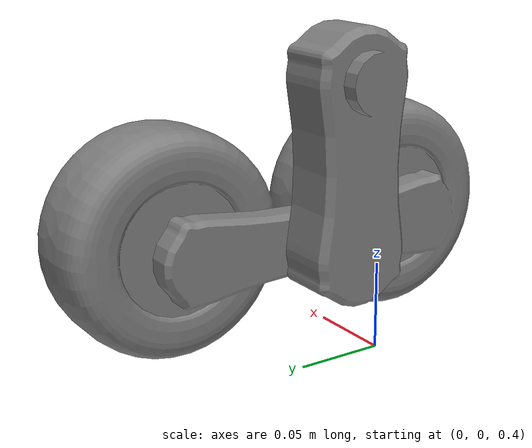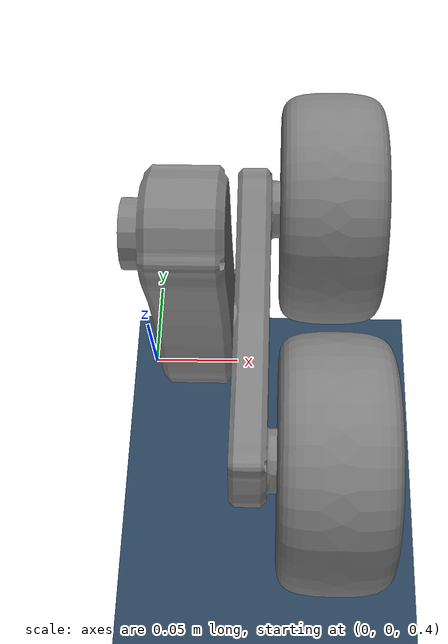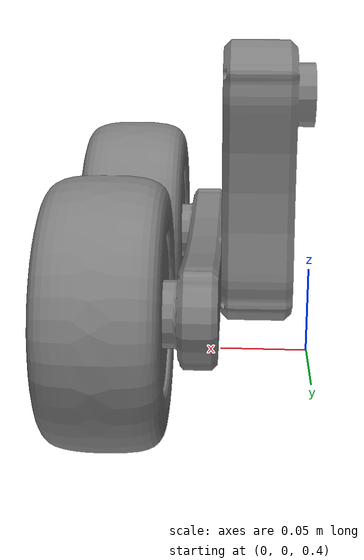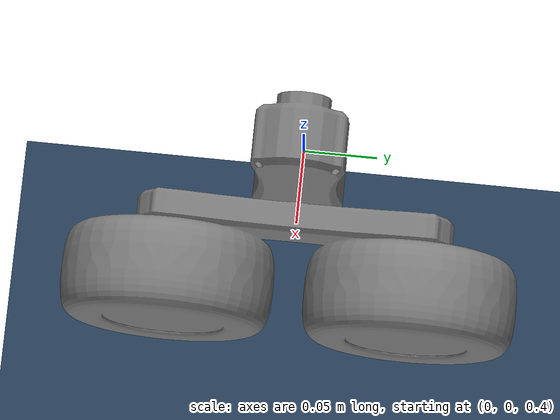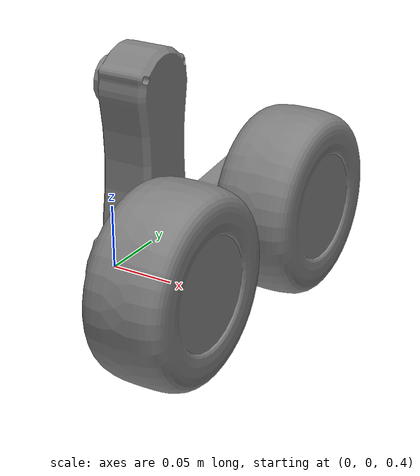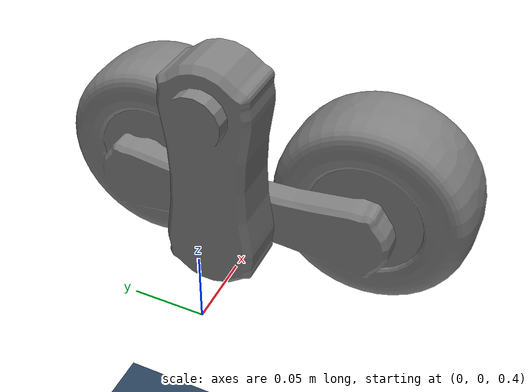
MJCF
<mujoco model="walter leg scene">
    <include file="leg.xml"/>

    <statistic center="0 0 0.1" extent="0.8"/>

    <visual>
        <headlight diffuse="0.6 0.6 0.6" ambient="0.3 0.3 0.3" specular="0 0 0"/>
        <rgba haze="0.15 0.25 0.35 1"/>
        <global azimuth="120" elevation="-20"/>
    </visual>

    <asset>
        <texture type="skybox" builtin="gradient" rgb1="0.3 0.5 0.7" rgb2="0 0 0" width="512" height="3072"/>
        <texture type="2d" name="groundplane" builtin="checker" mark="edge" rgb1="0.2 0.3 0.4" rgb2="0.1 0.2 0.3"
        markrgb="0.8 0.8 0.8" width="300" height="300"/>
        <material name="groundplane" texture="groundplane" texuniform="true" texrepeat="5 5" reflectance="0.2"/>
    </asset>

    <worldbody>
        <light pos="0 0 1.5" dir="0 0 -1" directional="true"/>
        <camera name="default" pos="0.846 -1.465 0.916" xyaxes="0.866 0.500 0.000 -0.171 0.296 0.940"/>
        <geom name="floor" size="0 0 0.05" type="plane" material="groundplane"/>
    </worldbody>

    <keyframe>
        <key name="home" qpos="0 0" ctrl="0.0 0.0"/>
    </keyframe>

</mujoco>

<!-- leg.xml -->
<mujoco model="walter_leg">
    <compiler angle="radian" inertiafromgeom="false"/>

    <option iterations="1" ls_iterations="5">
        <flag eulerdamp="disable"/>
    </option>

    <default>
        <default class="visual">
            <geom contype="0" conaffinity="0" type="mesh"/>
        </default>
    </default>

    <asset>
        <mesh name="thigh_mesh" file="assets/Thigh.stl"/>
        <mesh name="shin_mesh" file="assets/WheelShin.stl"/>
    </asset>

    <worldbody>
        <body name="fixed_base" pos="0.0 0.0 0.5" quat="1 0 0 0">
            <body name="thigh" pos="0 0 0" quat="1 0 1 0">
                <inertial pos="0 0 0" mass="0.20157" diaginertia="0.0005212 0.000114 0.0005585" quat="1 0 0 1"/>
                <joint name="hip" type="hinge" pos="-0.05 0 0" armature="0.0019764" damping="0.235"/>
                <geom class="visual" mesh="thigh_mesh" pos="-0.05 0 0" quat="1 0 0 1"/>
                <body name="shin" pos="0.05 0 0.05" quat="1 0 0 1">
                    <inertial pos="0 0 0" mass="0.843" diaginertia="0.000972 0.005802 0.005651" quat="1 0 0 0"/>
                    <joint name="knee" type="hinge" pos="0 0 0" armature="0.0070953" damping="0.2"/>
                    <geom class="visual" mesh="shin_mesh"/>
                </body>
            </body>
        </body>
    </worldbody>

    <actuator>
        <general name="hip_actuator" joint="hip" gear="6.0"/>
        <general name="knee_actuator" joint="knee" gear="11.368"/>
    </actuator>

</mujoco>
